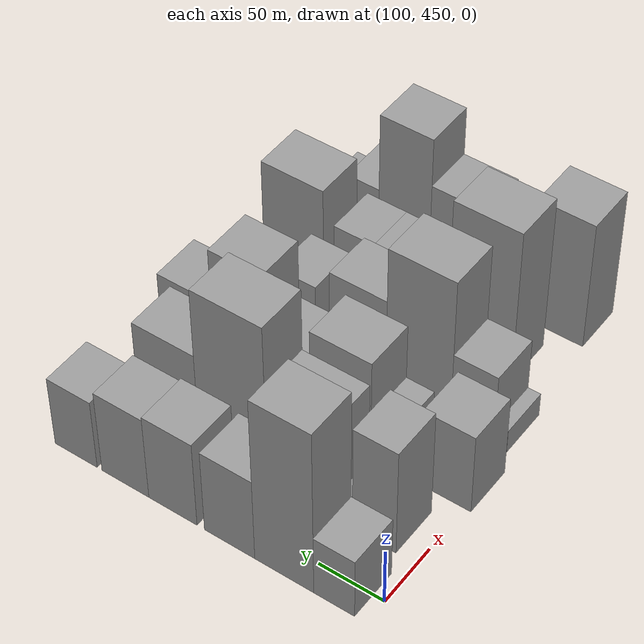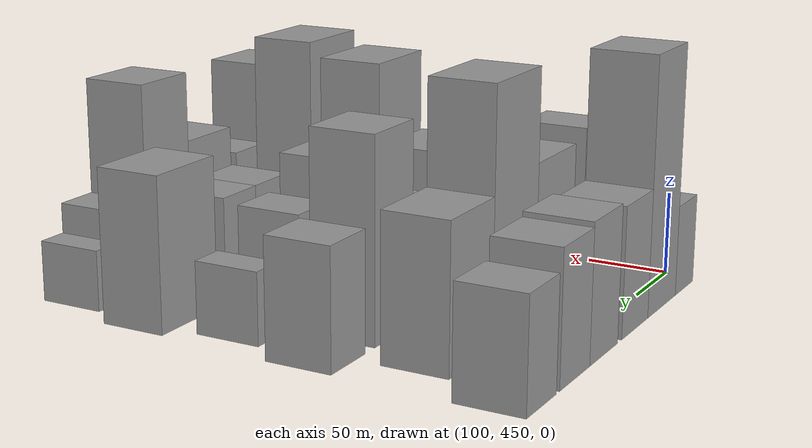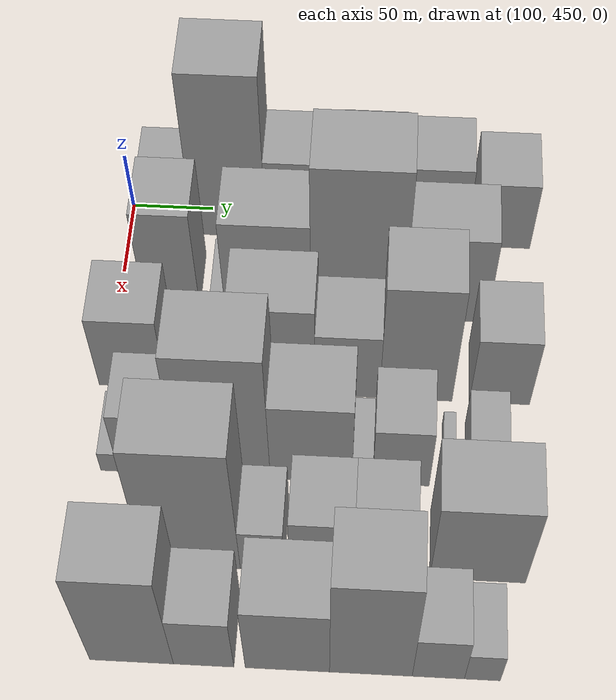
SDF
<sdf version="1.6">
 <world name="default">
  <model name="building_36">
   <static>1</static>
   <pose>100.0000 474.0347 0 0.000000 0.000000 0.000000</pose>
   <link name="link">
    <pose>0 0 27.00 0 0 0</pose>
    <collision name="collision"><geometry><box><size>40.0000 30.9840 54.0000</size></box></geometry></collision>
    <visual name="visual">
     <cast_shadows>0</cast_shadows>
     <geometry><box><size>40.0000 30.9840 54.0000</size></box></geometry>
     <material>
      <script>
       <uri>model://grey_wall/materials/scripts</uri>
       <uri>model://grey_wall/materials/textures</uri>
       <name>vrc/grey_wall</name>
      </script>
     </material>
    </visual>
   </link>
  </model>
  <model name="building_37">
   <static>1</static>
   <pose>100.0000 512.3588 0 0.000000 0.000000 0.000000</pose>
   <link name="link">
    <pose>0 0 75.00 0 0 0</pose>
    <collision name="collision"><geometry><box><size>40.0000 45.6642 150.0000</size></box></geometry></collision>
    <visual name="visual">
     <cast_shadows>0</cast_shadows>
     <geometry><box><size>40.0000 45.6642 150.0000</size></box></geometry>
     <material>
      <script>
       <uri>model://grey_wall/materials/scripts</uri>
       <uri>model://grey_wall/materials/textures</uri>
       <name>vrc/grey_wall</name>
      </script>
     </material>
    </visual>
   </link>
  </model>
  <model name="building_38">
   <static>1</static>
   <pose>100.0000 555.1416 0 0.000000 0.000000 0.000000</pose>
   <link name="link">
    <pose>0 0 37.50 0 0 0</pose>
    <collision name="collision"><geometry><box><size>40.0000 39.9015 75.0000</size></box></geometry></collision>
    <visual name="visual">
     <cast_shadows>0</cast_shadows>
     <geometry><box><size>40.0000 39.9015 75.0000</size></box></geometry>
     <material>
      <script>
       <uri>model://grey_wall/materials/scripts</uri>
       <uri>model://grey_wall/materials/textures</uri>
       <name>vrc/grey_wall</name>
      </script>
     </material>
    </visual>
   </link>
  </model>
  <model name="building_39">
   <static>1</static>
   <pose>100.0000 600.7138 0 0.000000 0.000000 0.000000</pose>
   <link name="link">
    <pose>0 0 39.00 0 0 0</pose>
    <collision name="collision"><geometry><box><size>40.0000 39.2430 78.0000</size></box></geometry></collision>
    <visual name="visual">
     <cast_shadows>0</cast_shadows>
     <geometry><box><size>40.0000 39.2430 78.0000</size></box></geometry>
     <material>
      <script>
       <uri>model://grey_wall/materials/scripts</uri>
       <uri>model://grey_wall/materials/textures</uri>
       <name>vrc/grey_wall</name>
      </script>
     </material>
    </visual>
   </link>
  </model>
  <model name="building_40">
   <static>1</static>
   <pose>100.0000 639.8418 0 0.000000 0.000000 0.000000</pose>
   <link name="link">
    <pose>0 0 37.50 0 0 0</pose>
    <collision name="collision"><geometry><box><size>40.0000 39.0130 75.0000</size></box></geometry></collision>
    <visual name="visual">
     <cast_shadows>0</cast_shadows>
     <geometry><box><size>40.0000 39.0130 75.0000</size></box></geometry>
     <material>
      <script>
       <uri>model://grey_wall/materials/scripts</uri>
       <uri>model://grey_wall/materials/textures</uri>
       <name>vrc/grey_wall</name>
      </script>
     </material>
    </visual>
   </link>
  </model>
  <model name="building_41">
   <static>1</static>
   <pose>100.0000 681.1982 0 0.000000 0.000000 0.000000</pose>
   <link name="link">
    <pose>0 0 31.50 0 0 0</pose>
    <collision name="collision"><geometry><box><size>40.0000 35.6999 63.0000</size></box></geometry></collision>
    <visual name="visual">
     <cast_shadows>0</cast_shadows>
     <geometry><box><size>40.0000 35.6999 63.0000</size></box></geometry>
     <material>
      <script>
       <uri>model://grey_wall/materials/scripts</uri>
       <uri>model://grey_wall/materials/textures</uri>
       <name>vrc/grey_wall</name>
      </script>
     </material>
    </visual>
   </link>
  </model>
  <model name="building_87">
   <static>1</static>
   <pose>155.0000 482.3253 0 0.000000 0.000000 0.000000</pose>
   <link name="link">
    <pose>0 0 48.00 0 0 0</pose>
    <collision name="collision"><geometry><box><size>40.0000 33.6070 96.0000</size></box></geometry></collision>
    <visual name="visual">
     <cast_shadows>0</cast_shadows>
     <geometry><box><size>40.0000 33.6070 96.0000</size></box></geometry>
     <material>
      <script>
       <uri>model://grey_wall/materials/scripts</uri>
       <uri>model://grey_wall/materials/textures</uri>
       <name>vrc/grey_wall</name>
      </script>
     </material>
    </visual>
   </link>
  </model>
  <model name="building_88">
   <static>1</static>
   <pose>155.0000 510.2449 0 0.000000 0.000000 0.000000</pose>
   <link name="link">
    <pose>0 0 9.00 0 0 0</pose>
    <collision name="collision"><geometry><box><size>40.0000 8.2322 18.0000</size></box></geometry></collision>
    <visual name="visual">
     <cast_shadows>0</cast_shadows>
     <geometry><box><size>40.0000 8.2322 18.0000</size></box></geometry>
     <material>
      <script>
       <uri>model://grey_wall/materials/scripts</uri>
       <uri>model://grey_wall/materials/textures</uri>
       <name>vrc/grey_wall</name>
      </script>
     </material>
    </visual>
   </link>
  </model>
  <model name="building_89">
   <static>1</static>
   <pose>155.0000 540.3311 0 0.000000 0.000000 0.000000</pose>
   <link name="link">
    <pose>0 0 45.00 0 0 0</pose>
    <collision name="collision"><geometry><box><size>40.0000 51.9402 90.0000</size></box></geometry></collision>
    <visual name="visual">
     <cast_shadows>0</cast_shadows>
     <geometry><box><size>40.0000 51.9402 90.0000</size></box></geometry>
     <material>
      <script>
       <uri>model://grey_wall/materials/scripts</uri>
       <uri>model://grey_wall/materials/textures</uri>
       <name>vrc/grey_wall</name>
      </script>
     </material>
    </visual>
   </link>
  </model>
  <model name="building_90">
   <static>1</static>
   <pose>155.0000 594.1640 0 0.000000 0.000000 0.000000</pose>
   <link name="link">
    <pose>0 0 72.00 0 0 0</pose>
    <collision name="collision"><geometry><box><size>40.0000 55.7255 144.0000</size></box></geometry></collision>
    <visual name="visual">
     <cast_shadows>0</cast_shadows>
     <geometry><box><size>40.0000 55.7255 144.0000</size></box></geometry>
     <material>
      <script>
       <uri>model://grey_wall/materials/scripts</uri>
       <uri>model://grey_wall/materials/textures</uri>
       <name>vrc/grey_wall</name>
      </script>
     </material>
    </visual>
   </link>
  </model>
  <model name="building_91">
   <static>1</static>
   <pose>155.0000 647.2074 0 0.000000 0.000000 0.000000</pose>
   <link name="link">
    <pose>0 0 42.00 0 0 0</pose>
    <collision name="collision"><geometry><box><size>40.0000 50.3614 84.0000</size></box></geometry></collision>
    <visual name="visual">
     <cast_shadows>0</cast_shadows>
     <geometry><box><size>40.0000 50.3614 84.0000</size></box></geometry>
     <material>
      <script>
       <uri>model://grey_wall/materials/scripts</uri>
       <uri>model://grey_wall/materials/textures</uri>
       <name>vrc/grey_wall</name>
      </script>
     </material>
    </visual>
   </link>
  </model>
  <model name="building_140">
   <static>1</static>
   <pose>210.0000 464.8243 0 0.000000 0.000000 0.000000</pose>
   <link name="link">
    <pose>0 0 36.00 0 0 0</pose>
    <collision name="collision"><geometry><box><size>40.0000 39.3422 72.0000</size></box></geometry></collision>
    <visual name="visual">
     <cast_shadows>0</cast_shadows>
     <geometry><box><size>40.0000 39.3422 72.0000</size></box></geometry>
     <material>
      <script>
       <uri>model://grey_wall/materials/scripts</uri>
       <uri>model://grey_wall/materials/textures</uri>
       <name>vrc/grey_wall</name>
      </script>
     </material>
    </visual>
   </link>
  </model>
  <model name="building_141">
   <static>1</static>
   <pose>210.0000 495.4326 0 0.000000 0.000000 0.000000</pose>
   <link name="link">
    <pose>0 0 13.50 0 0 0</pose>
    <collision name="collision"><geometry><box><size>40.0000 11.8744 27.0000</size></box></geometry></collision>
    <visual name="visual">
     <cast_shadows>0</cast_shadows>
     <geometry><box><size>40.0000 11.8744 27.0000</size></box></geometry>
     <material>
      <script>
       <uri>model://grey_wall/materials/scripts</uri>
       <uri>model://grey_wall/materials/textures</uri>
       <name>vrc/grey_wall</name>
      </script>
     </material>
    </visual>
   </link>
  </model>
  <model name="building_142">
   <static>1</static>
   <pose>210.0000 512.3777 0 0.000000 0.000000 0.000000</pose>
   <link name="link">
    <pose>0 0 21.00 0 0 0</pose>
    <collision name="collision"><geometry><box><size>40.0000 22.0159 42.0000</size></box></geometry></collision>
    <visual name="visual">
     <cast_shadows>0</cast_shadows>
     <geometry><box><size>40.0000 22.0159 42.0000</size></box></geometry>
     <material>
      <script>
       <uri>model://grey_wall/materials/scripts</uri>
       <uri>model://grey_wall/materials/textures</uri>
       <name>vrc/grey_wall</name>
      </script>
     </material>
    </visual>
   </link>
  </model>
  <model name="building_143">
   <static>1</static>
   <pose>210.0000 547.6105 0 0.000000 0.000000 0.000000</pose>
   <link name="link">
    <pose>0 0 45.00 0 0 0</pose>
    <collision name="collision"><geometry><box><size>40.0000 48.4497 90.0000</size></box></geometry></collision>
    <visual name="visual">
     <cast_shadows>0</cast_shadows>
     <geometry><box><size>40.0000 48.4497 90.0000</size></box></geometry>
     <material>
      <script>
       <uri>model://grey_wall/materials/scripts</uri>
       <uri>model://grey_wall/materials/textures</uri>
       <name>vrc/grey_wall</name>
      </script>
     </material>
    </visual>
   </link>
  </model>
  <model name="building_144">
   <static>1</static>
   <pose>210.0000 590.6155 0 0.000000 0.000000 0.000000</pose>
   <link name="link">
    <pose>0 0 33.00 0 0 0</pose>
    <collision name="collision"><geometry><box><size>40.0000 37.5603 66.0000</size></box></geometry></collision>
    <visual name="visual">
     <cast_shadows>0</cast_shadows>
     <geometry><box><size>40.0000 37.5603 66.0000</size></box></geometry>
     <material>
      <script>
       <uri>model://grey_wall/materials/scripts</uri>
       <uri>model://grey_wall/materials/textures</uri>
       <name>vrc/grey_wall</name>
      </script>
     </material>
    </visual>
   </link>
  </model>
  <model name="building_145">
   <static>1</static>
   <pose>210.0000 630.5248 0 0.000000 0.000000 0.000000</pose>
   <link name="link">
    <pose>0 0 58.50 0 0 0</pose>
    <collision name="collision"><geometry><box><size>40.0000 42.2582 117.0000</size></box></geometry></collision>
    <visual name="visual">
     <cast_shadows>0</cast_shadows>
     <geometry><box><size>40.0000 42.2582 117.0000</size></box></geometry>
     <material>
      <script>
       <uri>model://grey_wall/materials/scripts</uri>
       <uri>model://grey_wall/materials/textures</uri>
       <name>vrc/grey_wall</name>
      </script>
     </material>
    </visual>
   </link>
  </model>
  <model name="building_146">
   <static>1</static>
   <pose>210.0000 679.1802 0 0.000000 0.000000 0.000000</pose>
   <link name="link">
    <pose>0 0 34.50 0 0 0</pose>
    <collision name="collision"><geometry><box><size>40.0000 35.0526 69.0000</size></box></geometry></collision>
    <visual name="visual">
     <cast_shadows>0</cast_shadows>
     <geometry><box><size>40.0000 35.0526 69.0000</size></box></geometry>
     <material>
      <script>
       <uri>model://grey_wall/materials/scripts</uri>
       <uri>model://grey_wall/materials/textures</uri>
       <name>vrc/grey_wall</name>
      </script>
     </material>
    </visual>
   </link>
  </model>
  <model name="building_192">
   <static>1</static>
   <pose>265.0000 458.2795 0 0.000000 0.000000 0.000000</pose>
   <link name="link">
    <pose>0 0 10.50 0 0 0</pose>
    <collision name="collision"><geometry><box><size>40.0000 9.9912 21.0000</size></box></geometry></collision>
    <visual name="visual">
     <cast_shadows>0</cast_shadows>
     <geometry><box><size>40.0000 9.9912 21.0000</size></box></geometry>
     <material>
      <script>
       <uri>model://grey_wall/materials/scripts</uri>
       <uri>model://grey_wall/materials/textures</uri>
       <name>vrc/grey_wall</name>
      </script>
     </material>
    </visual>
   </link>
  </model>
  <model name="building_193">
   <static>1</static>
   <pose>265.0000 480.3680 0 0.000000 0.000000 0.000000</pose>
   <link name="link">
    <pose>0 0 33.00 0 0 0</pose>
    <collision name="collision"><geometry><box><size>40.0000 34.1857 66.0000</size></box></geometry></collision>
    <visual name="visual">
     <cast_shadows>0</cast_shadows>
     <geometry><box><size>40.0000 34.1857 66.0000</size></box></geometry>
     <material>
      <script>
       <uri>model://grey_wall/materials/scripts</uri>
       <uri>model://grey_wall/materials/textures</uri>
       <name>vrc/grey_wall</name>
      </script>
     </material>
    </visual>
   </link>
  </model>
  <model name="building_194">
   <static>1</static>
   <pose>265.0000 523.5234 0 0.000000 0.000000 0.000000</pose>
   <link name="link">
    <pose>0 0 66.00 0 0 0</pose>
    <collision name="collision"><geometry><box><size>40.0000 52.1252 132.0000</size></box></geometry></collision>
    <visual name="visual">
     <cast_shadows>0</cast_shadows>
     <geometry><box><size>40.0000 52.1252 132.0000</size></box></geometry>
     <material>
      <script>
       <uri>model://grey_wall/materials/scripts</uri>
       <uri>model://grey_wall/materials/textures</uri>
       <name>vrc/grey_wall</name>
      </script>
     </material>
    </visual>
   </link>
  </model>
  <model name="building_195">
   <static>1</static>
   <pose>265.0000 572.6271 0 0.000000 0.000000 0.000000</pose>
   <link name="link">
    <pose>0 0 42.00 0 0 0</pose>
    <collision name="collision"><geometry><box><size>40.0000 46.0823 84.0000</size></box></geometry></collision>
    <visual name="visual">
     <cast_shadows>0</cast_shadows>
     <geometry><box><size>40.0000 46.0823 84.0000</size></box></geometry>
     <material>
      <script>
       <uri>model://grey_wall/materials/scripts</uri>
       <uri>model://grey_wall/materials/textures</uri>
       <name>vrc/grey_wall</name>
      </script>
     </material>
    </visual>
   </link>
  </model>
  <model name="building_196">
   <static>1</static>
   <pose>265.0000 601.3978 0 0.000000 0.000000 0.000000</pose>
   <link name="link">
    <pose>0 0 13.50 0 0 0</pose>
    <collision name="collision"><geometry><box><size>40.0000 11.4591 27.0000</size></box></geometry></collision>
    <visual name="visual">
     <cast_shadows>0</cast_shadows>
     <geometry><box><size>40.0000 11.4591 27.0000</size></box></geometry>
     <material>
      <script>
       <uri>model://grey_wall/materials/scripts</uri>
       <uri>model://grey_wall/materials/textures</uri>
       <name>vrc/grey_wall</name>
      </script>
     </material>
    </visual>
   </link>
  </model>
  <model name="building_197">
   <static>1</static>
   <pose>265.0000 623.1608 0 0.000000 0.000000 0.000000</pose>
   <link name="link">
    <pose>0 0 31.50 0 0 0</pose>
    <collision name="collision"><geometry><box><size>40.0000 32.0669 63.0000</size></box></geometry></collision>
    <visual name="visual">
     <cast_shadows>0</cast_shadows>
     <geometry><box><size>40.0000 32.0669 63.0000</size></box></geometry>
     <material>
      <script>
       <uri>model://grey_wall/materials/scripts</uri>
       <uri>model://grey_wall/materials/textures</uri>
       <name>vrc/grey_wall</name>
      </script>
     </material>
    </visual>
   </link>
  </model>
  <model name="building_198">
   <static>1</static>
   <pose>265.0000 649.7334 0 0.000000 0.000000 0.000000</pose>
   <link name="link">
    <pose>0 0 7.50 0 0 0</pose>
    <collision name="collision"><geometry><box><size>40.0000 7.0781 15.0000</size></box></geometry></collision>
    <visual name="visual">
     <cast_shadows>0</cast_shadows>
     <geometry><box><size>40.0000 7.0781 15.0000</size></box></geometry>
     <material>
      <script>
       <uri>model://grey_wall/materials/scripts</uri>
       <uri>model://grey_wall/materials/textures</uri>
       <name>vrc/grey_wall</name>
      </script>
     </material>
    </visual>
   </link>
  </model>
  <model name="building_199">
   <static>1</static>
   <pose>265.0000 670.0539 0 0.000000 0.000000 0.000000</pose>
   <link name="link">
    <pose>0 0 21.00 0 0 0</pose>
    <collision name="collision"><geometry><box><size>40.0000 21.5629 42.0000</size></box></geometry></collision>
    <visual name="visual">
     <cast_shadows>0</cast_shadows>
     <geometry><box><size>40.0000 21.5629 42.0000</size></box></geometry>
     <material>
      <script>
       <uri>model://grey_wall/materials/scripts</uri>
       <uri>model://grey_wall/materials/textures</uri>
       <name>vrc/grey_wall</name>
      </script>
     </material>
    </visual>
   </link>
  </model>
  <model name="building_248">
   <static>1</static>
   <pose>320.0000 510.6835 0 0.000000 0.000000 0.000000</pose>
   <link name="link">
    <pose>0 0 69.00 0 0 0</pose>
    <collision name="collision"><geometry><box><size>40.0000 52.7520 138.0000</size></box></geometry></collision>
    <visual name="visual">
     <cast_shadows>0</cast_shadows>
     <geometry><box><size>40.0000 52.7520 138.0000</size></box></geometry>
     <material>
      <script>
       <uri>model://grey_wall/materials/scripts</uri>
       <uri>model://grey_wall/materials/textures</uri>
       <name>vrc/grey_wall</name>
      </script>
     </material>
    </visual>
   </link>
  </model>
  <model name="building_249">
   <static>1</static>
   <pose>320.0000 549.0645 0 0.000000 0.000000 0.000000</pose>
   <link name="link">
    <pose>0 0 24.00 0 0 0</pose>
    <collision name="collision"><geometry><box><size>40.0000 24.0100 48.0000</size></box></geometry></collision>
    <visual name="visual">
     <cast_shadows>0</cast_shadows>
     <geometry><box><size>40.0000 24.0100 48.0000</size></box></geometry>
     <material>
      <script>
       <uri>model://grey_wall/materials/scripts</uri>
       <uri>model://grey_wall/materials/textures</uri>
       <name>vrc/grey_wall</name>
      </script>
     </material>
    </visual>
   </link>
  </model>
  <model name="building_250">
   <static>1</static>
   <pose>320.0000 581.3247 0 0.000000 0.000000 0.000000</pose>
   <link name="link">
    <pose>0 0 31.50 0 0 0</pose>
    <collision name="collision"><geometry><box><size>40.0000 34.5103 63.0000</size></box></geometry></collision>
    <visual name="visual">
     <cast_shadows>0</cast_shadows>
     <geometry><box><size>40.0000 34.5103 63.0000</size></box></geometry>
     <material>
      <script>
       <uri>model://grey_wall/materials/scripts</uri>
       <uri>model://grey_wall/materials/textures</uri>
       <name>vrc/grey_wall</name>
      </script>
     </material>
    </visual>
   </link>
  </model>
  <model name="building_251">
   <static>1</static>
   <pose>320.0000 614.9283 0 0.000000 0.000000 0.000000</pose>
   <link name="link">
    <pose>0 0 31.50 0 0 0</pose>
    <collision name="collision"><geometry><box><size>40.0000 32.6970 63.0000</size></box></geometry></collision>
    <visual name="visual">
     <cast_shadows>0</cast_shadows>
     <geometry><box><size>40.0000 32.6970 63.0000</size></box></geometry>
     <material>
      <script>
       <uri>model://grey_wall/materials/scripts</uri>
       <uri>model://grey_wall/materials/textures</uri>
       <name>vrc/grey_wall</name>
      </script>
     </material>
    </visual>
   </link>
  </model>
  <model name="building_252">
   <static>1</static>
   <pose>320.0000 666.3265 0 0.000000 0.000000 0.000000</pose>
   <link name="link">
    <pose>0 0 45.00 0 0 0</pose>
    <collision name="collision"><geometry><box><size>40.0000 52.0994 90.0000</size></box></geometry></collision>
    <visual name="visual">
     <cast_shadows>0</cast_shadows>
     <geometry><box><size>40.0000 52.0994 90.0000</size></box></geometry>
     <material>
      <script>
       <uri>model://grey_wall/materials/scripts</uri>
       <uri>model://grey_wall/materials/textures</uri>
       <name>vrc/grey_wall</name>
      </script>
     </material>
    </visual>
   </link>
  </model>
  <model name="building_290">
   <static>1</static>
   <pose>375.0000 484.0161 0 0.000000 0.000000 0.000000</pose>
   <link name="link">
    <pose>0 0 57.00 0 0 0</pose>
    <collision name="collision"><geometry><box><size>40.0000 44.3467 114.0000</size></box></geometry></collision>
    <visual name="visual">
     <cast_shadows>0</cast_shadows>
     <geometry><box><size>40.0000 44.3467 114.0000</size></box></geometry>
     <material>
      <script>
       <uri>model://grey_wall/materials/scripts</uri>
       <uri>model://grey_wall/materials/textures</uri>
       <name>vrc/grey_wall</name>
      </script>
     </material>
    </visual>
   </link>
  </model>
  <model name="building_291">
   <static>1</static>
   <pose>375.0000 522.1667 0 0.000000 0.000000 0.000000</pose>
   <link name="link">
    <pose>0 0 31.50 0 0 0</pose>
    <collision name="collision"><geometry><box><size>40.0000 31.9545 63.0000</size></box></geometry></collision>
    <visual name="visual">
     <cast_shadows>0</cast_shadows>
     <geometry><box><size>40.0000 31.9545 63.0000</size></box></geometry>
     <material>
      <script>
       <uri>model://grey_wall/materials/scripts</uri>
       <uri>model://grey_wall/materials/textures</uri>
       <name>vrc/grey_wall</name>
      </script>
     </material>
    </visual>
   </link>
  </model>
  <model name="building_292">
   <static>1</static>
   <pose>375.0000 566.3394 0 0.000000 0.000000 0.000000</pose>
   <link name="link">
    <pose>0 0 40.50 0 0 0</pose>
    <collision name="collision"><geometry><box><size>40.0000 44.3908 81.0000</size></box></geometry></collision>
    <visual name="visual">
     <cast_shadows>0</cast_shadows>
     <geometry><box><size>40.0000 44.3908 81.0000</size></box></geometry>
     <material>
      <script>
       <uri>model://grey_wall/materials/scripts</uri>
       <uri>model://grey_wall/materials/textures</uri>
       <name>vrc/grey_wall</name>
      </script>
     </material>
    </visual>
   </link>
  </model>
  <model name="building_293">
   <static>1</static>
   <pose>375.0000 610.2532 0 0.000000 0.000000 0.000000</pose>
   <link name="link">
    <pose>0 0 61.50 0 0 0</pose>
    <collision name="collision"><geometry><box><size>40.0000 43.4367 123.0000</size></box></geometry></collision>
    <visual name="visual">
     <cast_shadows>0</cast_shadows>
     <geometry><box><size>40.0000 43.4367 123.0000</size></box></geometry>
     <material>
      <script>
       <uri>model://grey_wall/materials/scripts</uri>
       <uri>model://grey_wall/materials/textures</uri>
       <name>vrc/grey_wall</name>
      </script>
     </material>
    </visual>
   </link>
  </model>
  <model name="building_294">
   <static>1</static>
   <pose>375.0000 645.6508 0 0.000000 0.000000 0.000000</pose>
   <link name="link">
    <pose>0 0 27.00 0 0 0</pose>
    <collision name="collision"><geometry><box><size>40.0000 27.3584 54.0000</size></box></geometry></collision>
    <visual name="visual">
     <cast_shadows>0</cast_shadows>
     <geometry><box><size>40.0000 27.3584 54.0000</size></box></geometry>
     <material>
      <script>
       <uri>model://grey_wall/materials/scripts</uri>
       <uri>model://grey_wall/materials/textures</uri>
       <name>vrc/grey_wall</name>
      </script>
     </material>
    </visual>
   </link>
  </model>
  <model name="building_295">
   <static>1</static>
   <pose>375.0000 668.7551 0 0.000000 0.000000 0.000000</pose>
   <link name="link">
    <pose>0 0 18.00 0 0 0</pose>
    <collision name="collision"><geometry><box><size>40.0000 18.8502 36.0000</size></box></geometry></collision>
    <visual name="visual">
     <cast_shadows>0</cast_shadows>
     <geometry><box><size>40.0000 18.8502 36.0000</size></box></geometry>
     <material>
      <script>
       <uri>model://grey_wall/materials/scripts</uri>
       <uri>model://grey_wall/materials/textures</uri>
       <name>vrc/grey_wall</name>
      </script>
     </material>
    </visual>
   </link>
  </model>
 </world>
</sdf>
